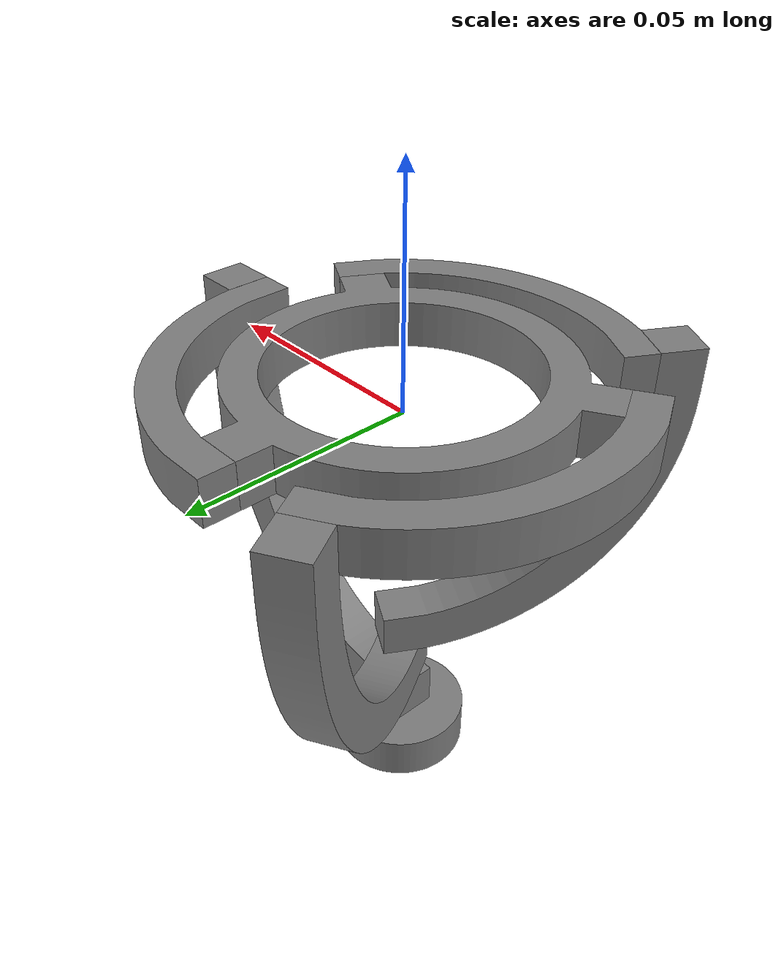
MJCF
<mujoco model="hw4">
  <compiler angle="radian" meshdir="meshes/"/>

  <asset>
    <mesh name="base_link" file="base_link.stl" scale="0.001 0.001 0.001"/>
    <mesh name="gray1" file="gray1.stl" scale="0.001 0.001 0.001"/>
    <mesh name="blue1" file="blue1.stl" scale="0.001 0.001 0.001"/>
    <mesh name="black1" file="black1.stl" scale="0.001 0.001 0.001"/>
    <mesh name="red_circle1" file="red_circle1.stl" scale="0.001 0.001 0.001"/>
    <mesh name="white1" file="white1.stl" scale="0.001 0.001 0.001"/>
    <mesh name="yellow1" file="yellow1.stl" scale="0.001 0.001 0.001"/>
    <mesh name="green1" file="green1.stl" scale="0.001 0.001 0.001"/>
  </asset>

  <worldbody>
    <body name="base_link">
      <inertial pos="2.94796e-06 1.70201e-06 -0.0846474" quat="0.5 0.5 -0.5 0.5" mass="0.0554884" diaginertia="6.24244e-06 3.58362e-06 3.58362e-06"/>
      <geom type="mesh" contype="0" conaffinity="0" group="1" density="0" mesh="base_link"/>
      <geom type="mesh" mesh="base_link"/>
      <body name="gray1" pos="3e-06 2e-06 -0.079647">
        <inertial pos="0.0368944 -2.97994e-07 0.0368241" quat="0.678875 0.197809 0.197809 0.678875" mass="0.0925613" diaginertia="9.925e-05 9.44514e-05 6.34125e-06"/>
        <joint name="Revolute_17" pos="0 0 0" axis="0 0 1"/>
        <geom pos="-3e-06 -2e-06 0.079647" quat="1 0 0 0" type="mesh" contype="0" conaffinity="0" group="1" density="0" mesh="gray1"/>
        <geom pos="-3e-06 -2e-06 0.079647" quat="1 0 0 0" type="mesh" mesh="gray1"/>
        <body name="blue1" pos="0 0 0.010042">
          <inertial pos="-0.0180769 0.0313097 0.0319037" quat="0.916505 -0.305009 -0.0817269 0.245577" mass="0.08637" diaginertia="7.90604e-05 7.47965e-05 5.70337e-06"/>
          <joint name="Revolute_18" pos="0 0 0" axis="0 0 1"/>
          <geom pos="-3e-06 -2e-06 0.069605" type="mesh" contype="0" conaffinity="0" group="1" density="0" mesh="blue1"/>
          <geom pos="-3e-06 -2e-06 0.069605" type="mesh" mesh="blue1"/>
          <body name="black1" pos="0 0 0.010042">
            <inertial pos="-0.0175283 -0.0303601 0.0275946" quat="0.900438 0.349606 -0.0936766 -0.241272" mass="0.0793449" diaginertia="6.12788e-05 5.80164e-05 4.58485e-06"/>
            <joint name="Revolute_19" pos="0 0 0" axis="0 0 1"/>
            <geom pos="-3e-06 -2e-06 0.059563" type="mesh" contype="0" conaffinity="0" group="1" density="0" mesh="black1"/>
            <geom pos="-3e-06 -2e-06 0.059563" type="mesh" mesh="black1"/>
            <body name="yellow1" pos="-0.024876 -0.043086 0.064563">
              <inertial pos="0.0353237 0.00408462 0" quat="-0.0922789 0.70106 0.0922789 0.70106" mass="0.0487166" diaginertia="2.52203e-05 2.40923e-05 1.94e-06"/>
              <joint name="Revolute_22" pos="0 0 0" axis="0.5 0.866025 0"/>
              <geom pos="0.024873 0.043084 -0.005" quat="1 0 0 0" type="mesh" contype="0" conaffinity="0" group="1" density="0" mesh="yellow1"/>
              <geom pos="0.024873 0.043084 -0.005" quat="1 0 0 0" type="mesh" mesh="yellow1"/>
            </body>
          </body>
          <body name="green1" pos="-0.024876 0.043085 0.074605">
            <inertial pos="-0.0141238 -0.0326327 0" quat="0.560996 0.430446 -0.560996 0.430446" mass="0.0487166" diaginertia="2.52203e-05 2.40923e-05 1.94e-06"/>
            <joint name="Revolute_23" pos="0 0 0" axis="0.5 -0.866025 0"/>
            <geom pos="0.024873 -0.043087 -0.005" quat="1 0 0 0" type="mesh" contype="0" conaffinity="0" group="1" density="0" mesh="green1"/>
            <geom pos="0.024873 -0.043087 -0.005" quat="1 0 0 0" type="mesh" mesh="green1"/>
            <body name="red_circle1" pos="-0.011677 -0.064189 0">
              <inertial pos="0.03655 0.021102 0" quat="0.5 0.5 -0.5 0.5" mass="0.132849" diaginertia="0.000140362 7.12883e-05 7.12883e-05"/>
              <joint name="Revolute_20" pos="0 0 0" axis="0.866025 0.5 0"/>
              <geom pos="0.03655 0.021102 -0.005" quat="1 0 0 0" type="mesh" contype="0" conaffinity="0" group="1" density="0" mesh="red_circle1"/>
              <geom pos="0.03655 0.021102 -0.005" quat="1 0 0 0" type="mesh" mesh="red_circle1"/>
            </body>
          </body>
        </body>
        <body name="white1" pos="0.049751 0 0.084647">
          <inertial pos="-0.0212005 0.028549 0" quat="0.270601 0.65328 -0.270601 0.65328" mass="0.0487193" diaginertia="2.5223e-05 2.40947e-05 1.94033e-06"/>
          <joint name="Revolute_21" pos="0 0 0" axis="-1 0 0"/>
          <geom pos="-0.049754 -2e-06 -0.005" quat="1 0 0 0" type="mesh" contype="0" conaffinity="0" group="1" density="0" mesh="white1"/>
          <geom pos="-0.049754 -2e-06 -0.005" quat="1 0 0 0" type="mesh" mesh="white1"/>
        </body>
      </body>
    </body>
  </worldbody>
</mujoco>
